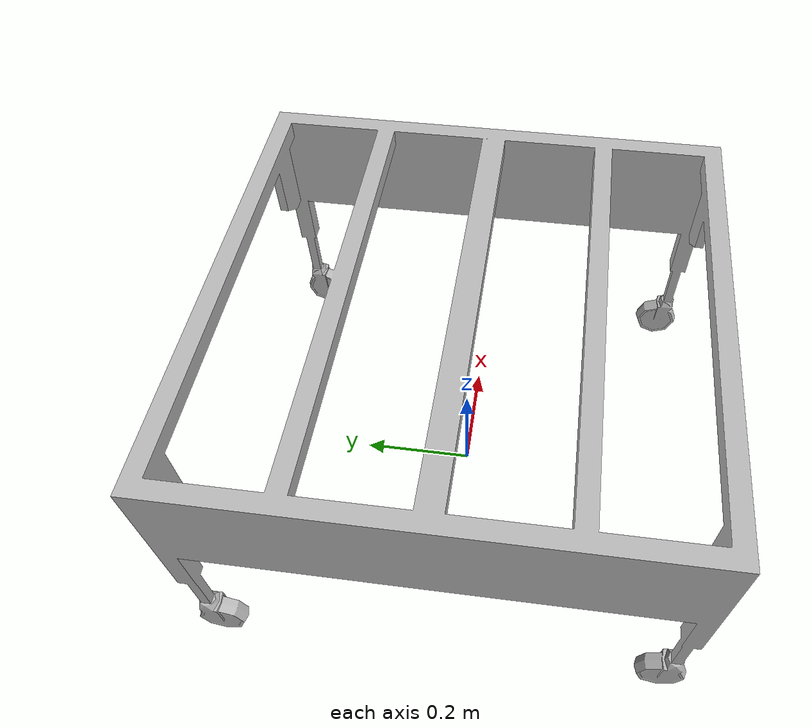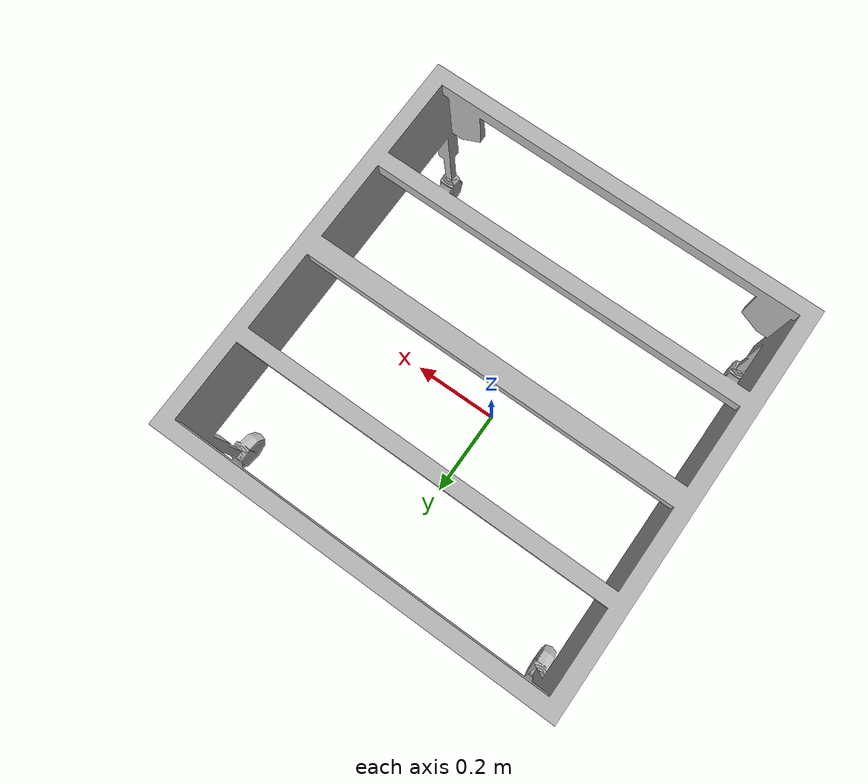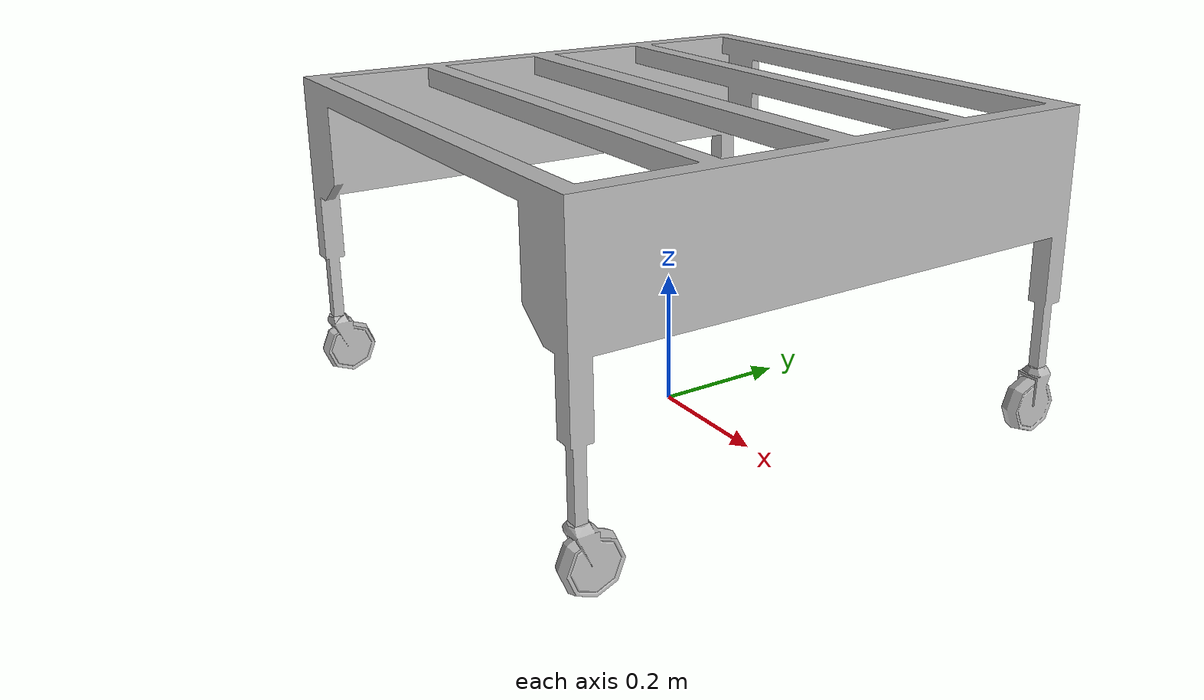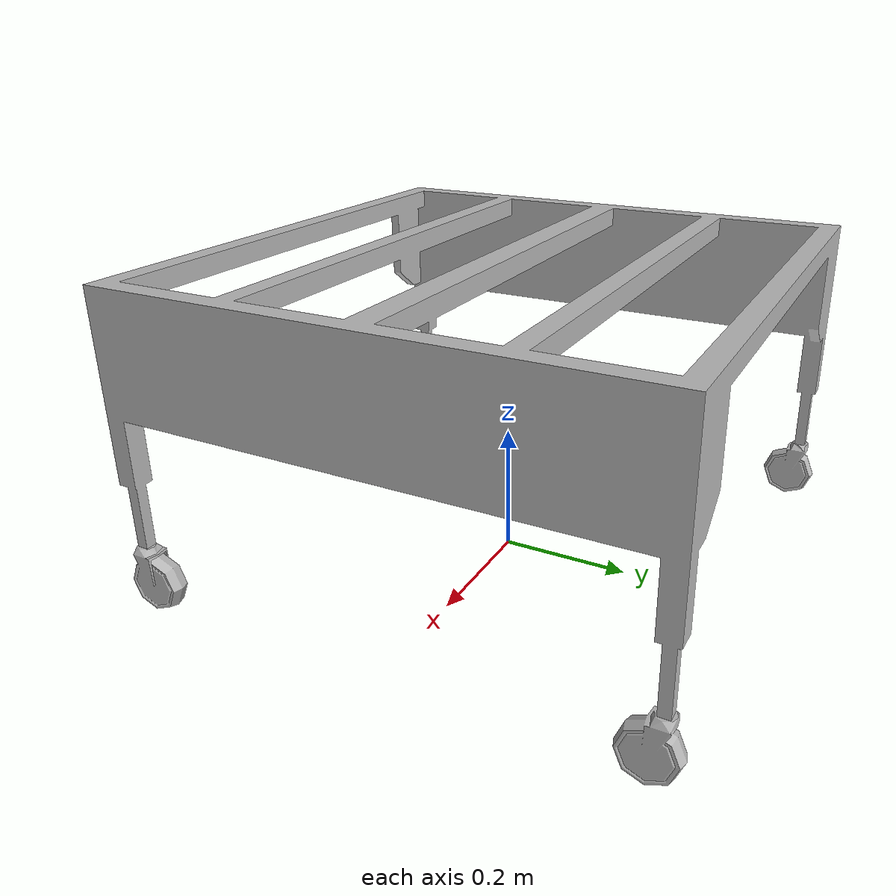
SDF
<?xml version="1.0"?>

<sdf version="1.6">
  <model name='MiRCart'>
   <static>true</static>
    <link name="body">
      <pose>0 0 0 0 0 0</pose>

      <visual name="visual">
        <geometry>
          <mesh>
            <uri>model://MiRCart/meshes/cart.obj</uri>
          </mesh>
        </geometry>
      </visual>

      <collision name="collision">
        <geometry>
          <mesh>
            <uri>model://MiRCart/meshes/cart.obj</uri>
          </mesh>
        </geometry>
      </collision>

    </link>
  </model>
</sdf>
